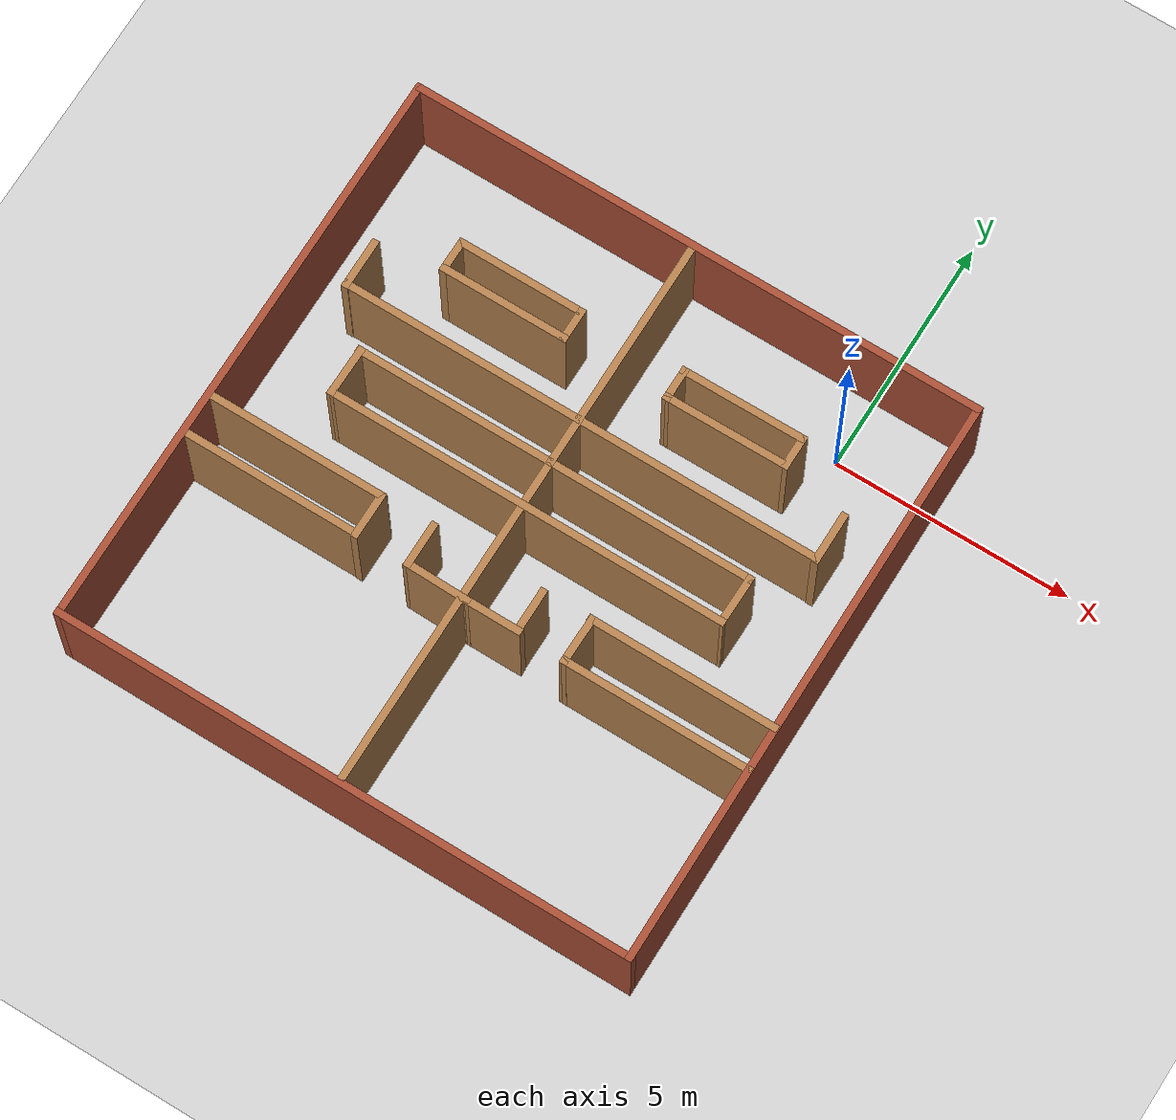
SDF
<sdf version="1.7">
 <world name="default">
  <light name="sun" type="directional">
   <pose>0 0 10 0 -0 0</pose>
   <diffuse>0.8 0.8 0.8 1</diffuse>
   <specular>0.2 0.2 0.2 1</specular>
   <attenuation>
    <range>1000</range>
    <constant>0.9</constant>
    <linear>0.01</linear>
    <quadratic>0.001</quadratic>
   </attenuation>
   <direction>-0.5 0.1 -0.9</direction>
   <spot><inner_angle>0</inner_angle><outer_angle>0</outer_angle><falloff>0</falloff></spot>
  </light>
  <model name="ground_plane">
   <static>1</static>
   <link name="link">
    <collision name="collision">
     <geometry><plane><normal>0 0 1</normal><size>100 100</size></plane></geometry>
     <surface><friction><ode><mu>100</mu><mu2>50</mu2></ode></friction></surface>
    </collision>
    <visual name="visual">
     <cast_shadows>0</cast_shadows>
     <geometry><plane><normal>0 0 1</normal><size>100 100</size></plane></geometry>
     <material>
      <script><uri>file://media/materials/scripts/gazebo.material</uri><name>Gazebo/Grey</name></script>
     </material>
    </visual>
   </link>
  </model>
  <gravity>0 0 -9.8</gravity>
  <magnetic_field>6e-06 2.3e-05 -4.2e-05</magnetic_field>
  <atmosphere type="adiabatic"/>
  <physics type="ode">
   <max_step_size>0.001</max_step_size>
   <real_time_factor>1</real_time_factor>
   <real_time_update_rate>1000</real_time_update_rate>
  </physics>
  <scene><ambient>0.4 0.4 0.4 1</ambient><background>0.7 0.7 0.7 1</background><shadows>1</shadows></scene>
  <audio><device>default</device></audio>
  <spherical_coordinates>
   <surface_model>EARTH_WGS84</surface_model>
   <latitude_deg>0</latitude_deg>
   <longitude_deg>0</longitude_deg>
   <elevation>0</elevation>
   <heading_deg>0</heading_deg>
  </spherical_coordinates>
  <model name="robocon_map">
   <pose>-4.03811 -4.5947 0 0 -0 0</pose>
   <link name="Wall_0">
    <collision name="Wall_0_Collision">
     <geometry><box><size>12.25 0.15 2.5</size></box></geometry>
     <pose>0 0 1.25 0 -0 0</pose>
    </collision>
    <visual name="Wall_0_Visual">
     <pose>0 0 1.25 0 -0 0</pose>
     <geometry><box><size>12.25 0.15 2.5</size></box></geometry>
     <material>
      <script><uri>file://media/materials/scripts/gazebo.material</uri><name>Gazebo/Bricks</name></script>
      <ambient>1 1 1 1</ambient>
     </material>
     <meta><layer>0</layer></meta>
    </visual>
    <pose>-6.05 0 0 0 -0 1.5708</pose>
   </link>
   <link name="Wall_1">
    <collision name="Wall_1_Collision">
     <geometry><box><size>12.25 0.15 2.5</size></box></geometry>
     <pose>0 0 1.25 0 -0 0</pose>
    </collision>
    <visual name="Wall_1_Visual">
     <pose>0 0 1.25 0 -0 0</pose>
     <geometry><box><size>12.25 0.15 2.5</size></box></geometry>
     <material>
      <script><uri>file://media/materials/scripts/gazebo.material</uri><name>Gazebo/Bricks</name></script>
      <ambient>1 1 1 1</ambient>
     </material>
     <meta><layer>0</layer></meta>
    </visual>
    <pose>0 6.05 0 0 -0 0</pose>
   </link>
   <link name="Wall_11">
    <collision name="Wall_11_Collision">
     <geometry><box><size>4 0.15 2.5</size></box></geometry>
     <pose>0 0 1.25 0 -0 0</pose>
    </collision>
    <visual name="Wall_11_Visual">
     <pose>0 0 1.25 0 -0 0</pose>
     <geometry><box><size>4 0.15 2.5</size></box></geometry>
     <material>
      <script><uri>file://media/materials/scripts/gazebo.material</uri><name>Gazebo/Wood</name></script>
      <ambient>1 1 1 1</ambient>
     </material>
     <meta><layer>0</layer></meta>
    </visual>
    <pose>4.10185 -2.01151 0 0 -0 0</pose>
   </link>
   <link name="Wall_13">
    <collision name="Wall_13_Collision">
     <geometry><box><size>1.06698 0.15 2.5</size></box></geometry>
     <pose>0 0 1.25 0 -0 0</pose>
    </collision>
    <visual name="Wall_13_Visual">
     <pose>0 0 1.25 0 -0 0</pose>
     <geometry><box><size>1.06698 0.15 2.5</size></box></geometry>
     <material>
      <script><uri>file://media/materials/scripts/gazebo.material</uri><name>Gazebo/Wood</name></script>
      <ambient>1 1 1 1</ambient>
     </material>
     <meta><layer>0</layer></meta>
    </visual>
    <pose>2.18346 -1.55344 0 0 -0 1.55636</pose>
   </link>
   <link name="Wall_14">
    <collision name="Wall_14_Collision">
     <geometry><box><size>4 0.15 2.5</size></box></geometry>
     <pose>0 0 1.25 0 -0 0</pose>
    </collision>
    <visual name="Wall_14_Visual">
     <pose>0 0 1.25 0 -0 0</pose>
     <geometry><box><size>4 0.15 2.5</size></box></geometry>
     <material>
      <script><uri>file://media/materials/scripts/gazebo.material</uri><name>Gazebo/Wood</name></script>
      <ambient>1 1 1 1</ambient>
     </material>
     <meta><layer>0</layer></meta>
    </visual>
    <pose>4.10185 -1.09538 0 0 -0 0</pose>
   </link>
   <link name="Wall_16">
    <collision name="Wall_16_Collision">
     <geometry><box><size>1 0.15 2.5</size></box></geometry>
     <pose>0 0 1.25 0 -0 0</pose>
    </collision>
    <visual name="Wall_16_Visual">
     <pose>0 0 1.25 0 -0 0</pose>
     <geometry><box><size>1 0.15 2.5</size></box></geometry>
     <material>
      <script><uri>file://media/materials/scripts/gazebo.material</uri><name>Gazebo/Wood</name></script>
      <ambient>1 1 1 1</ambient>
     </material>
     <meta><layer>0</layer></meta>
    </visual>
    <pose>-1.19552 -1.52398 0 0 -0 -1.5708</pose>
   </link>
   <link name="Wall_17">
    <collision name="Wall_17_Collision">
     <geometry><box><size>1.41755 0.15 2.5</size></box></geometry>
     <pose>0 0 1.25 0 -0 0</pose>
    </collision>
    <visual name="Wall_17_Visual">
     <pose>0 0 1.25 0 -0 0</pose>
     <geometry><box><size>1.41755 0.15 2.5</size></box></geometry>
     <material>
      <script><uri>file://media/materials/scripts/gazebo.material</uri><name>Gazebo/Wood</name></script>
      <ambient>1 1 1 1</ambient>
     </material>
     <meta><layer>0</layer></meta>
    </visual>
    <pose>-0.561887 -1.96221 0 0 -0 -0.020869</pose>
   </link>
   <link name="Wall_19">
    <collision name="Wall_19_Collision">
     <geometry><box><size>1 0.15 2.5</size></box></geometry>
     <pose>0 0 1.25 0 -0 0</pose>
    </collision>
    <visual name="Wall_19_Visual">
     <pose>0 0 1.25 0 -0 0</pose>
     <geometry><box><size>1 0.15 2.5</size></box></geometry>
     <material>
      <script><uri>file://media/materials/scripts/gazebo.material</uri><name>Gazebo/Wood</name></script>
      <ambient>1 1 1 1</ambient>
     </material>
     <meta><layer>0</layer></meta>
    </visual>
    <pose>1.15853 -1.55043 0 0 -0 -1.5708</pose>
   </link>
   <link name="Wall_2">
    <collision name="Wall_2_Collision">
     <geometry><box><size>12.25 0.15 2.5</size></box></geometry>
     <pose>0 0 1.25 0 -0 0</pose>
    </collision>
    <visual name="Wall_2_Visual">
     <pose>0 0 1.25 0 -0 0</pose>
     <geometry><box><size>12.25 0.15 2.5</size></box></geometry>
     <material>
      <script><uri>file://media/materials/scripts/gazebo.material</uri><name>Gazebo/Bricks</name></script>
      <ambient>1 1 1 1</ambient>
     </material>
     <meta><layer>0</layer></meta>
    </visual>
    <pose>6.05 0 0 0 -0 -1.5708</pose>
   </link>
   <link name="Wall_20">
    <collision name="Wall_20_Collision">
     <geometry><box><size>1.25 0.15 2.5</size></box></geometry>
     <pose>0 0 1.25 0 -0 0</pose>
    </collision>
    <visual name="Wall_20_Visual">
     <pose>0 0 1.25 0 -0 0</pose>
     <geometry><box><size>1.25 0.15 2.5</size></box></geometry>
     <material>
      <script><uri>file://media/materials/scripts/gazebo.material</uri><name>Gazebo/Wood</name></script>
      <ambient>1 1 1 1</ambient>
     </material>
     <meta><layer>0</layer></meta>
    </visual>
    <pose>0.62175 -1.97543 0 0 -0 3.14159</pose>
   </link>
   <link name="Wall_22">
    <collision name="Wall_22_Collision">
     <geometry><box><size>1.10589 0.15 2.5</size></box></geometry>
     <pose>0 0 1.25 0 -0 0</pose>
    </collision>
    <visual name="Wall_22_Visual">
     <pose>0 0 1.25 0 -0 0</pose>
     <geometry><box><size>1.10589 0.15 2.5</size></box></geometry>
     <material>
      <script><uri>file://media/materials/scripts/gazebo.material</uri><name>Gazebo/Wood</name></script>
      <ambient>1 1 1 1</ambient>
     </material>
     <meta><layer>0</layer></meta>
    </visual>
    <pose>-4.15131 0.582394 0 0 -0 1.55696</pose>
   </link>
   <link name="Wall_23">
    <collision name="Wall_23_Collision">
     <geometry><box><size>8.5 0.15 2.5</size></box></geometry>
     <pose>0 0 1.25 0 -0 0</pose>
    </collision>
    <visual name="Wall_23_Visual">
     <pose>0 0 1.25 0 -0 0</pose>
     <geometry><box><size>8.5 0.15 2.5</size></box></geometry>
     <material>
      <script><uri>file://media/materials/scripts/gazebo.material</uri><name>Gazebo/Wood</name></script>
      <ambient>1 1 1 1</ambient>
     </material>
     <meta><layer>0</layer></meta>
    </visual>
    <pose>0.017075 1.06029 0 0 -0 0</pose>
   </link>
   <link name="Wall_24">
    <collision name="Wall_24_Collision">
     <geometry><box><size>1.10589 0.15 2.5</size></box></geometry>
     <pose>0 0 1.25 0 -0 0</pose>
    </collision>
    <visual name="Wall_24_Visual">
     <pose>0 0 1.25 0 -0 0</pose>
     <geometry><box><size>1.10589 0.15 2.5</size></box></geometry>
     <material>
      <script><uri>file://media/materials/scripts/gazebo.material</uri><name>Gazebo/Wood</name></script>
      <ambient>1 1 1 1</ambient>
     </material>
     <meta><layer>0</layer></meta>
    </visual>
    <pose>4.19869 0.582394 0 0 -0 -1.58463</pose>
   </link>
   <link name="Wall_25">
    <collision name="Wall_25_Collision">
     <geometry><box><size>8.5 0.15 2.5</size></box></geometry>
     <pose>0 0 1.25 0 -0 0</pose>
    </collision>
    <visual name="Wall_25_Visual">
     <pose>0 0 1.25 0 -0 0</pose>
     <geometry><box><size>8.5 0.15 2.5</size></box></geometry>
     <material>
      <script><uri>file://media/materials/scripts/gazebo.material</uri><name>Gazebo/Wood</name></script>
      <ambient>1 1 1 1</ambient>
     </material>
     <meta><layer>0</layer></meta>
    </visual>
    <pose>0.017075 0.104494 0 0 -0 3.14159</pose>
   </link>
   <link name="Wall_27">
    <collision name="Wall_27_Collision">
     <geometry><box><size>1.1058 0.15 2.5</size></box></geometry>
     <pose>0 0 1.25 0 -0 0</pose>
    </collision>
    <visual name="Wall_27_Visual">
     <pose>0 0 1.25 0 -0 0</pose>
     <geometry><box><size>1.1058 0.15 2.5</size></box></geometry>
     <material>
      <script><uri>file://media/materials/scripts/gazebo.material</uri><name>Gazebo/Wood</name></script>
      <ambient>1 1 1 1</ambient>
     </material>
     <meta><layer>0</layer></meta>
    </visual>
    <pose>-5.07045 2.49642 0 0 -0 -1.5708</pose>
   </link>
   <link name="Wall_28">
    <collision name="Wall_28_Collision">
     <geometry><box><size>10.25 0.15 2.5</size></box></geometry>
     <pose>0 0 1.25 0 -0 0</pose>
    </collision>
    <visual name="Wall_28_Visual">
     <pose>0 0 1.25 0 -0 0</pose>
     <geometry><box><size>10.25 0.15 2.5</size></box></geometry>
     <material>
      <script><uri>file://media/materials/scripts/gazebo.material</uri><name>Gazebo/Wood</name></script>
      <ambient>1 1 1 1</ambient>
     </material>
     <meta><layer>0</layer></meta>
    </visual>
    <pose>-0.02045 2.03174 0 0 -0 0</pose>
   </link>
   <link name="Wall_29">
    <collision name="Wall_29_Collision">
     <geometry><box><size>1.1058 0.15 2.5</size></box></geometry>
     <pose>0 0 1.25 0 -0 0</pose>
    </collision>
    <visual name="Wall_29_Visual">
     <pose>0 0 1.25 0 -0 0</pose>
     <geometry><box><size>1.1058 0.15 2.5</size></box></geometry>
     <material>
      <script><uri>file://media/materials/scripts/gazebo.material</uri><name>Gazebo/Wood</name></script>
      <ambient>1 1 1 1</ambient>
     </material>
     <meta><layer>0</layer></meta>
    </visual>
    <pose>5.02955 2.49642 0 0 -0 1.5708</pose>
   </link>
   <link name="Wall_3">
    <collision name="Wall_3_Collision">
     <geometry><box><size>12.25 0.15 2.5</size></box></geometry>
     <pose>0 0 1.25 0 -0 0</pose>
    </collision>
    <visual name="Wall_3_Visual">
     <pose>0 0 1.25 0 -0 0</pose>
     <geometry><box><size>12.25 0.15 2.5</size></box></geometry>
     <material>
      <script><uri>file://media/materials/scripts/gazebo.material</uri><name>Gazebo/Bricks</name></script>
      <ambient>1 1 1 1</ambient>
     </material>
     <meta><layer>0</layer></meta>
    </visual>
    <pose>0 -6.05 0 0 -0 3.14159</pose>
   </link>
   <link name="Wall_31">
    <collision name="Wall_31_Collision">
     <geometry><box><size>0.75 0.15 2.5</size></box></geometry>
     <pose>0 0 1.25 0 -0 0</pose>
    </collision>
    <visual name="Wall_31_Visual">
     <pose>0 0 1.25 0 -0 0</pose>
     <geometry><box><size>0.75 0.15 2.5</size></box></geometry>
     <material>
      <script><uri>file://media/materials/scripts/gazebo.material</uri><name>Gazebo/Wood</name></script>
      <ambient>1 1 1 1</ambient>
     </material>
     <meta><layer>0</layer></meta>
    </visual>
    <pose>-3.70827 3.53882 0 0 -0 1.5708</pose>
   </link>
   <link name="Wall_32">
    <collision name="Wall_32_Collision">
     <geometry><box><size>2.75 0.15 2.5</size></box></geometry>
     <pose>0 0 1.25 0 -0 0</pose>
    </collision>
    <visual name="Wall_32_Visual">
     <pose>0 0 1.25 0 -0 0</pose>
     <geometry><box><size>2.75 0.15 2.5</size></box></geometry>
     <material>
      <script><uri>file://media/materials/scripts/gazebo.material</uri><name>Gazebo/Wood</name></script>
      <ambient>1 1 1 1</ambient>
     </material>
     <meta><layer>0</layer></meta>
    </visual>
    <pose>-2.40828 3.83882 0 0 -0 0</pose>
   </link>
   <link name="Wall_33">
    <collision name="Wall_33_Collision">
     <geometry><box><size>0.75 0.15 2.5</size></box></geometry>
     <pose>0 0 1.25 0 -0 0</pose>
    </collision>
    <visual name="Wall_33_Visual">
     <pose>0 0 1.25 0 -0 0</pose>
     <geometry><box><size>0.75 0.15 2.5</size></box></geometry>
     <material>
      <script><uri>file://media/materials/scripts/gazebo.material</uri><name>Gazebo/Wood</name></script>
      <ambient>1 1 1 1</ambient>
     </material>
     <meta><layer>0</layer></meta>
    </visual>
    <pose>-1.10827 3.53882 0 0 -0 -1.5708</pose>
   </link>
   <link name="Wall_34">
    <collision name="Wall_34_Collision">
     <geometry><box><size>2.75 0.15 2.5</size></box></geometry>
     <pose>0 0 1.25 0 -0 0</pose>
    </collision>
    <visual name="Wall_34_Visual">
     <pose>0 0 1.25 0 -0 0</pose>
     <geometry><box><size>2.75 0.15 2.5</size></box></geometry>
     <material>
      <script><uri>file://media/materials/scripts/gazebo.material</uri><name>Gazebo/Wood</name></script>
      <ambient>1 1 1 1</ambient>
     </material>
     <meta><layer>0</layer></meta>
    </visual>
    <pose>-2.40828 3.23882 0 0 -0 3.14159</pose>
   </link>
   <link name="Wall_36">
    <collision name="Wall_36_Collision">
     <geometry><box><size>0.75 0.15 2.5</size></box></geometry>
     <pose>0 0 1.25 0 -0 0</pose>
    </collision>
    <visual name="Wall_36_Visual">
     <pose>0 0 1.25 0 -0 0</pose>
     <geometry><box><size>0.75 0.15 2.5</size></box></geometry>
     <material>
      <script><uri>file://media/materials/scripts/gazebo.material</uri><name>Gazebo/Wood</name></script>
      <ambient>1 1 1 1</ambient>
     </material>
     <meta><layer>0</layer></meta>
    </visual>
    <pose>1.10563 3.55204 0 0 -0 1.5708</pose>
   </link>
   <link name="Wall_37">
    <collision name="Wall_37_Collision">
     <geometry><box><size>2.64424 0.15 2.5</size></box></geometry>
     <pose>0 0 1.25 0 -0 0</pose>
    </collision>
    <visual name="Wall_37_Visual">
     <pose>0 0 1.25 0 -0 0</pose>
     <geometry><box><size>2.64424 0.15 2.5</size></box></geometry>
     <material>
      <script><uri>file://media/materials/scripts/gazebo.material</uri><name>Gazebo/Wood</name></script>
      <ambient>1 1 1 1</ambient>
     </material>
     <meta><layer>0</layer></meta>
    </visual>
    <pose>2.35273 3.85866 0 0 -0 0.005302</pose>
   </link>
   <link name="Wall_38">
    <collision name="Wall_38_Collision">
     <geometry><box><size>0.75 0.15 2.5</size></box></geometry>
     <pose>0 0 1.25 0 -0 0</pose>
    </collision>
    <visual name="Wall_38_Visual">
     <pose>0 0 1.25 0 -0 0</pose>
     <geometry><box><size>0.75 0.15 2.5</size></box></geometry>
     <material>
      <script><uri>file://media/materials/scripts/gazebo.material</uri><name>Gazebo/Wood</name></script>
      <ambient>1 1 1 1</ambient>
     </material>
     <meta><layer>0</layer></meta>
    </visual>
    <pose>3.62628 3.56527 0 0 -0 -1.5708</pose>
   </link>
   <link name="Wall_39">
    <collision name="Wall_39_Collision">
     <geometry><box><size>2.64424 0.15 2.5</size></box></geometry>
     <pose>0 0 1.25 0 -0 0</pose>
    </collision>
    <visual name="Wall_39_Visual">
     <pose>0 0 1.25 0 -0 0</pose>
     <geometry><box><size>2.64424 0.15 2.5</size></box></geometry>
     <material>
      <script><uri>file://media/materials/scripts/gazebo.material</uri><name>Gazebo/Wood</name></script>
      <ambient>1 1 1 1</ambient>
     </material>
     <meta><layer>0</layer></meta>
    </visual>
    <pose>2.35273 3.25866 0 0 -0 -3.13629</pose>
   </link>
   <link name="Wall_5">
    <collision name="Wall_5_Collision">
     <geometry><box><size>12 0.15 2.5</size></box></geometry>
     <pose>0 0 1.25 0 -0 0</pose>
    </collision>
    <visual name="Wall_5_Visual">
     <pose>0 0 1.25 0 -0 0</pose>
     <geometry><box><size>12 0.15 2.5</size></box></geometry>
     <material>
      <script><uri>file://media/materials/scripts/gazebo.material</uri><name>Gazebo/Wood</name></script>
      <ambient>1 1 1 1</ambient>
     </material>
     <meta><layer>0</layer></meta>
    </visual>
    <pose>-0.036042 -0.004318 0 0 -0 1.5708</pose>
   </link>
   <link name="Wall_7">
    <collision name="Wall_7_Collision">
     <geometry><box><size>3.75 0.15 2.5</size></box></geometry>
     <pose>0 0 1.25 0 -0 0</pose>
    </collision>
    <visual name="Wall_7_Visual">
     <pose>0 0 1.25 0 -0 0</pose>
     <geometry><box><size>3.75 0.15 2.5</size></box></geometry>
     <material>
      <script><uri>file://media/materials/scripts/gazebo.material</uri><name>Gazebo/Wood</name></script>
      <ambient>1 1 1 1</ambient>
     </material>
     <meta><layer>0</layer></meta>
    </visual>
    <pose>-4.10363 -1.95861 0 0 -0 0</pose>
   </link>
   <link name="Wall_8">
    <collision name="Wall_8_Collision">
     <geometry><box><size>1 0.15 2.5</size></box></geometry>
     <pose>0 0 1.25 0 -0 0</pose>
    </collision>
    <visual name="Wall_8_Visual">
     <pose>0 0 1.25 0 -0 0</pose>
     <geometry><box><size>1 0.15 2.5</size></box></geometry>
     <material>
      <script><uri>file://media/materials/scripts/gazebo.material</uri><name>Gazebo/Wood</name></script>
      <ambient>1 1 1 1</ambient>
     </material>
     <meta><layer>0</layer></meta>
    </visual>
    <pose>-2.30362 -1.54683 0 0 -0 1.5708</pose>
   </link>
   <link name="Wall_9">
    <collision name="Wall_9_Collision">
     <geometry><box><size>3.75 0.15 2.5</size></box></geometry>
     <pose>0 0 1.25 0 -0 0</pose>
    </collision>
    <visual name="Wall_9_Visual">
     <pose>0 0 1.25 0 -0 0</pose>
     <geometry><box><size>3.75 0.15 2.5</size></box></geometry>
     <material>
      <script><uri>file://media/materials/scripts/gazebo.material</uri><name>Gazebo/Wood</name></script>
      <ambient>1 1 1 1</ambient>
     </material>
     <meta><layer>0</layer></meta>
    </visual>
    <pose>-4.10363 -1.10861 0 0 -0 3.14159</pose>
   </link>
   <static>1</static>
  </model>
 </world>
</sdf>
